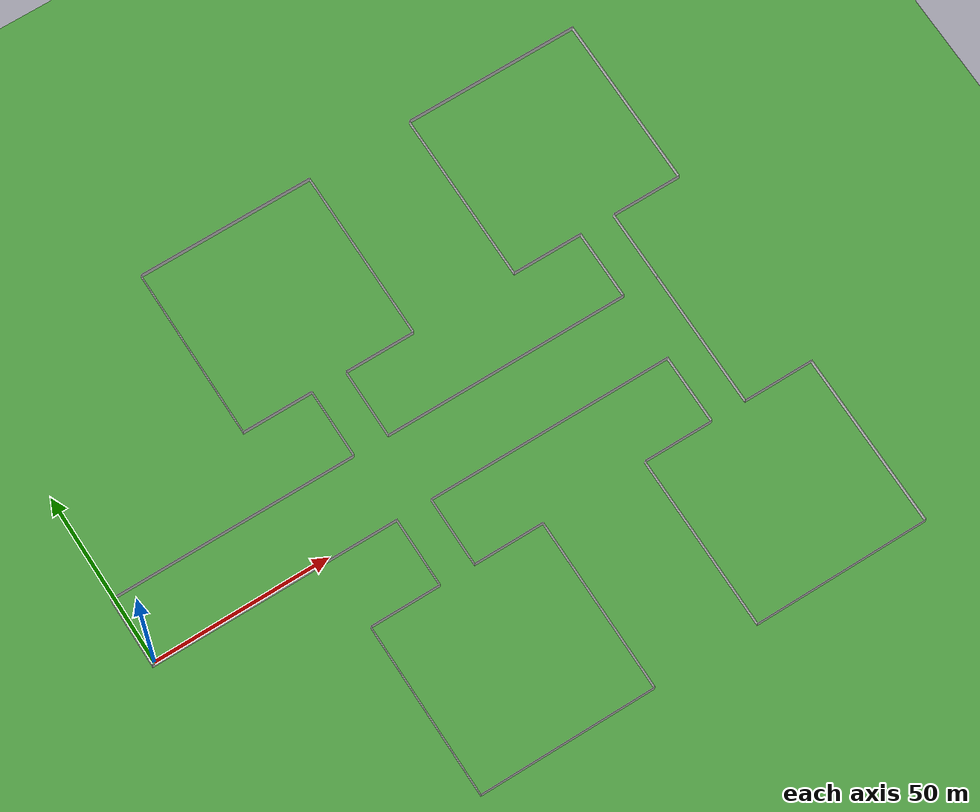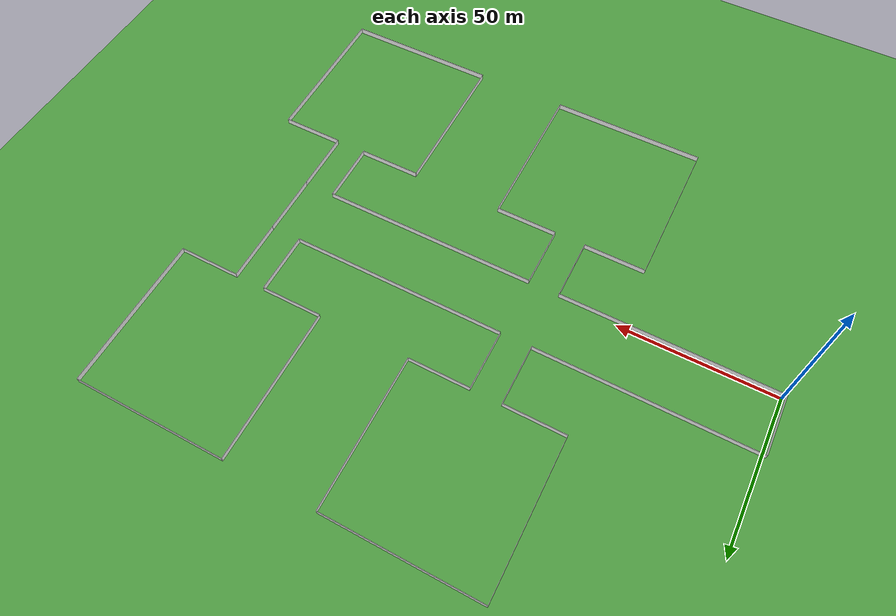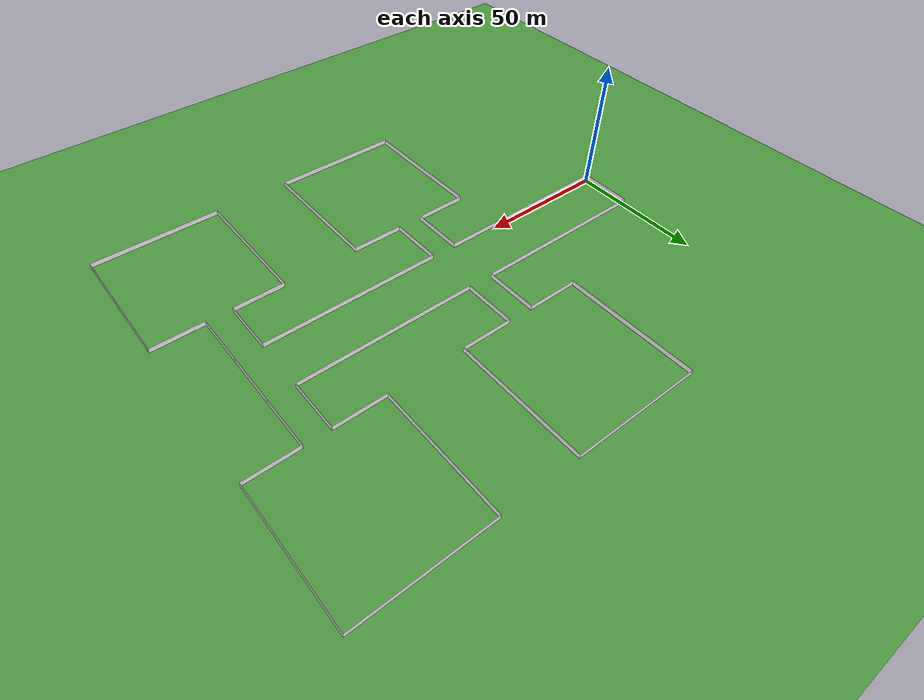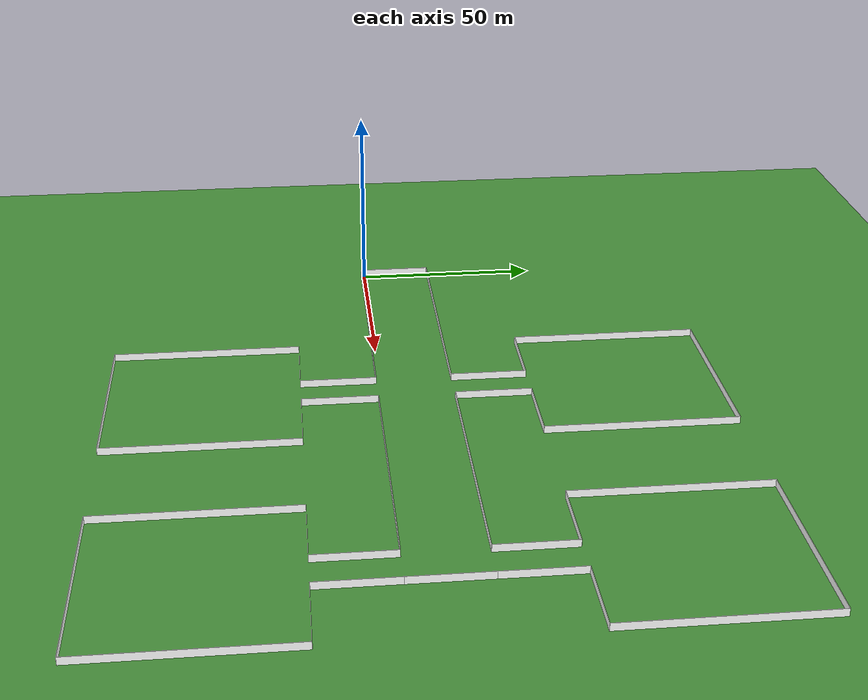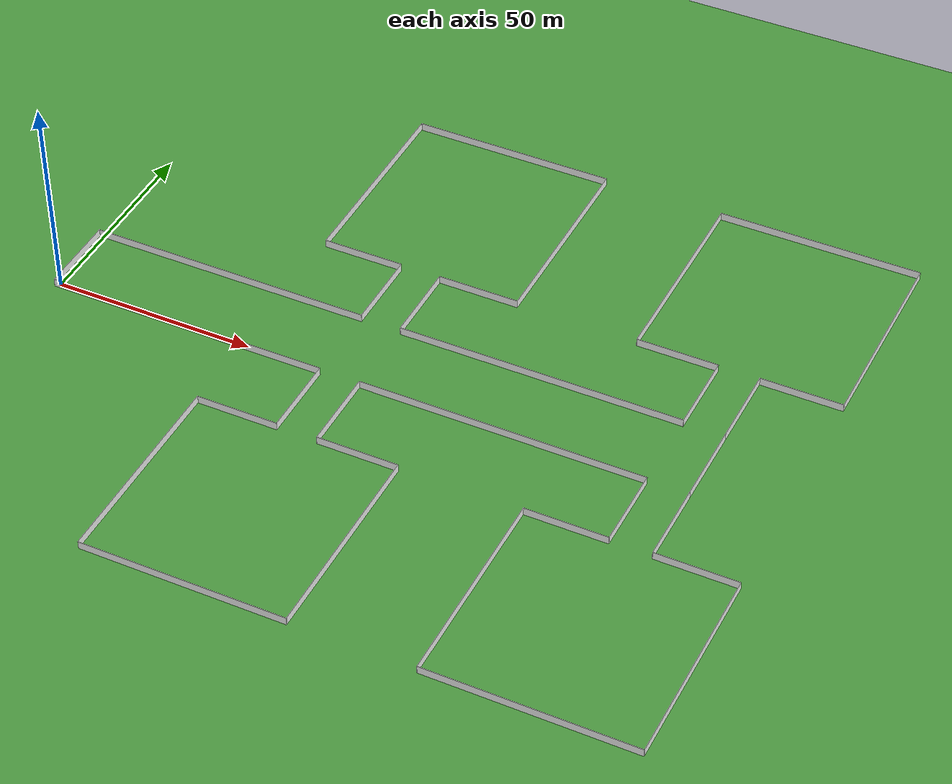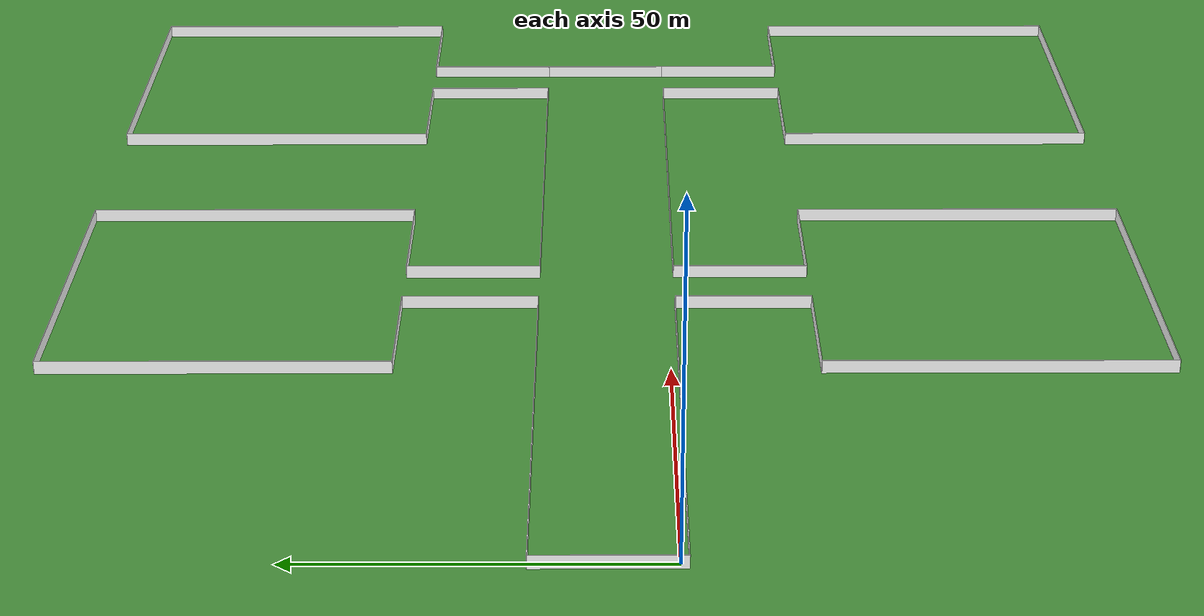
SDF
<sdf version="1.6">
 <world name="default">
  <include><uri>model://sun</uri></include>
  <gravity>0 0 -9.8</gravity>
  <magnetic_field>6e-06 2.3e-05 -4.2e-05</magnetic_field>
  <atmosphere type="adiabatic"/>
  <scene>
   <ambient>0.4 0.4 0.4 1</ambient>
   <background>0.7 0.7 0.7 1</background>
   <shadows>1</shadows>
   <sky><clouds><speed>10</speed></clouds></sky>
   <grid>0</grid>
   <origin_visual>0</origin_visual>
  </scene>
  <model name="ground_plane">
   <pose>120 0 0 0 0 0</pose>
   <static>1</static>
   <link name="link">
    <collision name="collision">
     <geometry><plane><normal>0 0 1</normal><size>300 300</size></plane></geometry>
     <surface><friction><ode><mu>100</mu><mu2>50</mu2></ode></friction></surface>
    </collision>
    <visual name="visual">
     <geometry><plane><normal>0 0 1</normal><size>300 300</size></plane></geometry>
     <material>
      <script>
       <uri>model://corridor/materials/scripts</uri>
       <uri>model://corridor/materials/textures</uri>
       <name>Gazebo/Grass</name>
      </script>
     </material>
    </visual>
   </link>
  </model>
  <model name="Corridor_Section_1">
   <include><uri>model://corridor</uri><pose>-1 -1 1 0 3.1416 -1.5708</pose></include>
  </model>
  <model name="Corridor_Section_2">
   <include><uri>model://corridor</uri><pose>79 -1 1 0 3.1416 -1.5708</pose></include>
  </model>
  <model name="Wall_start">
   <static>1</static>
   <link name="Wall_1">
    <collision name="Wall_1_Collision"><geometry><box><size>20 0.1 2</size></box></geometry></collision>
    <visual name="Wall_1_Visual">
     <geometry><box><size>20 0.1 2</size></box></geometry>
     <material>
      <script>
       <uri>model://corridor/materials/scripts</uri>
       <uri>model://corridor/materials/textures</uri>
       <name>Gazebo/Brick</name>
      </script>
      <ambient>1 1 1 1</ambient>
     </material>
     <meta><layer>0</layer></meta>
    </visual>
    <pose>10 0 0 0 0 0</pose>
   </link>
   <pose>-1 -1 1 0 3.1416 -1.5708</pose>
  </model>
  <model name="Wall_end">
   <static>1</static>
   <link name="Wall_1">
    <collision name="Wall_1_Collision"><geometry><box><size>20 0.1 2</size></box></geometry></collision>
    <visual name="Wall_1_Visual">
     <geometry><box><size>20 0.1 2</size></box></geometry>
     <material>
      <script>
       <uri>model://corridor/materials/scripts</uri>
       <uri>model://corridor/materials/textures</uri>
       <name>Gazebo/Brick</name>
      </script>
      <ambient>1 1 1 1</ambient>
     </material>
     <meta><layer>0</layer></meta>
    </visual>
    <pose>10 160 0 0 0 0</pose>
   </link>
   <pose>-1 -1 1 0 3.1416 -1.5708</pose>
  </model>
  <model name="Enclosure_1">
   <include><uri>model://enclosure</uri><pose>49 89 1 0 0 -1.5708</pose></include>
  </model>
  <model name="Enclosure_2">
   <include><uri>model://enclosure</uri><pose>49 -71 1 0 3.1416 -1.5708</pose></include>
  </model>
  <model name="Enclosure_3">
   <include><uri>model://enclosure</uri><pose>129 89 1 0 0 -1.5708</pose></include>
  </model>
  <model name="Enclosure_4">
   <include><uri>model://enclosure</uri><pose>129 -71 1 0 3.1416 -1.5708</pose></include>
  </model>
  <plugin name="ActorPosesPlugin" filename="libActorPosesPlugin.so"/>
 </world>
</sdf>

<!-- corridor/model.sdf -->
<sdf version='1.6'>
  <model name='corridor'>
    <pose frame=''>0 0 0 0 0 0</pose>
    <static>1</static>

    <link name='Wall_1'>
      <collision name='Wall_1_Collision'>
        <geometry>
          <box>
            <size>0.1 70 2</size>
          </box>
        </geometry>
        <pose frame=''>0 0 0 0 0 0</pose>
      </collision>
      <visual name='Wall_1_Visual'>
        <pose frame=''>0 0 0 0 0 0</pose>
        <geometry>
          <box>
            <size>0.1 70 2</size>
          </box>
        </geometry>
        <material>
          <script>
            <uri>model://corridor/materials/scripts</uri>
            <uri>model://corridor/materials/textures</uri>
            <name>Gazebo/Brick</name>
          </script>
          <ambient>1 1 1 1</ambient>
        </material>
        <meta>
          <layer>0</layer>
        </meta>
      </visual>
      <pose frame=''>0 35 0 0 0 0</pose>
    </link>

    <link name='Wall_2'>
      <collision name='Wall_2_Collision'>
        <geometry>
          <box>
            <size>20 0.1 2</size>
          </box>
        </geometry>
        <pose frame=''>0 0 0 0 0 0</pose>
      </collision>
      <visual name='Wall_2_Visual'>
        <pose frame=''>0 0 0 0 0 0</pose>
        <geometry>
          <box>
            <size>20 0.1 2</size>
          </box>
        </geometry>
        <material>
          <script>
            <name>Gazebo/Brick</name>
          </script>
          <ambient>1 1 1 1</ambient>
        </material>
        <meta>
          <layer>0</layer>
        </meta>
      </visual>
      <pose frame=''>-10 70 0 0 0 0</pose>
    </link>

    <link name='Wall_4'>
      <collision name='Wall_4_Collision'>
        <geometry>
          <box>
            <size>20 0.1 2</size>
          </box>
        </geometry>
        <pose frame=''>0 0 0 0 0 0</pose>
      </collision>
      <visual name='Wall_4_Visual'>
        <pose frame=''>0 0 0 0 0 0</pose>
        <geometry>
          <box>
            <size>20 0.1 2</size>
          </box>
        </geometry>
        <material>
          <script>
            <name>Gazebo/Brick</name>
          </script>
          <ambient>1 1 1 1</ambient>
        </material>
        <meta>
          <layer>0</layer>
        </meta>
      </visual>
      <pose frame=''>-10 80 0 0 0 0</pose>
    </link>

    <link name='Wall_5'>
      <collision name='Wall_5_Collision'>
        <geometry>
          <box>
            <size>20 0.1 2</size>
          </box>
        </geometry>
        <pose frame=''>0 0 0 0 0 0</pose>
      </collision>
      <visual name='Wall_5_Visual'>
        <pose frame=''>0 0 0 0 0 0</pose>
        <geometry>
          <box>
            <size>20 0.1 2</size>
          </box>
        </geometry>
        <material>
          <script>
            <name>Gazebo/Brick</name>
          </script>
          <ambient>1 1 1 1</ambient>
        </material>
        <meta>
          <layer>0</layer>
        </meta>
      </visual>
      <pose frame=''>30 80 0 0 0 0</pose>
    </link>

    <link name='Wall_7'>
      <collision name='Wall_7_Collision'>
        <geometry>
          <box>
            <size>20 0.1 2</size>
          </box>
        </geometry>
        <pose frame=''>0 0 0 0 0 0</pose>
      </collision>
      <visual name='Wall_7_Visual'>
        <pose frame=''>0 0 0 0 0 0</pose>
        <geometry>
          <box>
            <size>-20 0.1 2</size>
          </box>
        </geometry>
        <material>
          <script>
            <name>Gazebo/Brick</name>
          </script>
          <ambient>1 1 1 1</ambient>
        </material>
        <meta>
          <layer>0</layer>
        </meta>
      </visual>
      <pose frame=''>30 70 0 0 0 0</pose>
    </link>

    <link name='Wall_8'>
      <collision name='Wall_8_Collision'>
        <geometry>
          <box>
            <size>0.1 70 2</size>
          </box>
        </geometry>
        <pose frame=''>0 0 0 0 0 0</pose>
      </collision>
      <visual name='Wall_8_Visual'>
        <pose frame=''>0 0 0 0 0 0</pose>
        <geometry>
          <box>
            <size>0.1 70 2</size>
          </box>
        </geometry>
        <material>
          <script>
            <name>Gazebo/Brick</name>
          </script>
          <ambient>1 1 1 1</ambient>
        </material>
        <meta>
          <layer>0</layer>
        </meta>
      </visual>
      <pose frame=''>20 35 0 0 0 0</pose>
    </link>

  </model>
</sdf>

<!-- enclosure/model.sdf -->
<sdf version='1.6'>
  <model name='enclosure'>
    <pose frame=''>0 0 0 0 0 0</pose>
    <static>1</static>

    <link name='Wall_1'>
      <collision name='Wall_1_Collision'>
        <geometry>
          <box>
            <size>0.1 50 2</size>
          </box>
        </geometry>
        <pose frame=''>0 0 0 0 0 0</pose>
      </collision>
      <visual name='Wall_1_Visual'>
        <pose frame=''>0 0 0 0 0 0</pose>
        <geometry>
          <box>
            <size>0.1 50 2</size>
          </box>
        </geometry>
        <material>
          <script>
            <uri>model://corridor/materials/scripts</uri>
            <uri>model://corridor/materials/textures</uri>
            <name>Gazebo/Brick</name>
          </script>
          <ambient>1 1 1 1</ambient>
        </material>
        <meta>
          <layer>0</layer>
        </meta>
      </visual>
      <pose frame=''>0 25 0 0 0 0</pose>
    </link>

    <link name='Wall_2'>
      <collision name='Wall_2_Collision'>
        <geometry>
          <box>
            <size>50 0.1 2</size>
          </box>
        </geometry>
        <pose frame=''>0 0 0 0 0 0</pose>
      </collision>
      <visual name='Wall_2_Visual'>
        <pose frame=''>0 0 0 0 0 0</pose>
        <geometry>
          <box>
            <size>50 0.1 2</size>
          </box>
        </geometry>
        <material>
          <script>
            <name>Gazebo/Brick</name>
          </script>
          <ambient>1 1 1 1</ambient>
        </material>
        <meta>
          <layer>0</layer>
        </meta>
      </visual>
      <pose frame=''>25 50 0 0 0 0</pose>
    </link>

    <link name='Wall_3'>
      <collision name='Wall_3_Collision'>
        <geometry>
          <box>
            <size>0.1 20 2</size>
          </box>
        </geometry>
        <pose frame=''>0 0 0 0 0 0</pose>
      </collision>
      <visual name='Wall_3_Visual'>
        <pose frame=''>0 0 0 0 0 0</pose>
        <geometry>
          <box>
            <size>0.1 20 2</size>
          </box>
        </geometry>
        <material>
          <script>
            <name>Gazebo/Brick</name>
          </script>
          <ambient>1 1 1 1</ambient>
        </material>
        <meta>
          <layer>0</layer>
        </meta>
      </visual>
      <pose frame=''>50 40 0 0 0 0</pose>
    </link>

    <link name='Wall_4'>
      <collision name='Wall_4_Collision'>
        <geometry>
          <box>
            <size>0.1 20 2</size>
          </box>
        </geometry>
        <pose frame=''>0 0 0 0 0 0</pose>
      </collision>
      <visual name='Wall_4_Visual'>
        <pose frame=''>0 0 0 0 0 0</pose>
        <geometry>
          <box>
            <size>0.1 20 2</size>
          </box>
        </geometry>
        <material>
          <script>
            <name>Gazebo/Brick</name>
          </script>
          <ambient>1 1 1 1</ambient>
        </material>
        <meta>
          <layer>0</layer>
        </meta>
      </visual>
      <pose frame=''>50 10 0 0 0 0</pose>
    </link>

    <link name='Wall_5'>
      <collision name='Wall_5_Collision'>
        <geometry>
          <box>
            <size>50 0.1 2</size>
          </box>
        </geometry>
        <pose frame=''>0 0 0 0 0 0</pose>
      </collision>
      <visual name='Wall_5_Visual'>
        <pose frame=''>0 0 0 0 0 0</pose>
        <geometry>
          <box>
            <size>50 0.1 2</size>
          </box>
        </geometry>
        <material>
          <script>
            <name>Gazebo/Brick</name>
          </script>
          <ambient>1 1 1 1</ambient>
        </material>
        <meta>
          <layer>0</layer>
        </meta>
      </visual>
      <pose frame=''>25 0 0 0 0 0</pose>
    </link>

  </model>
</sdf>
